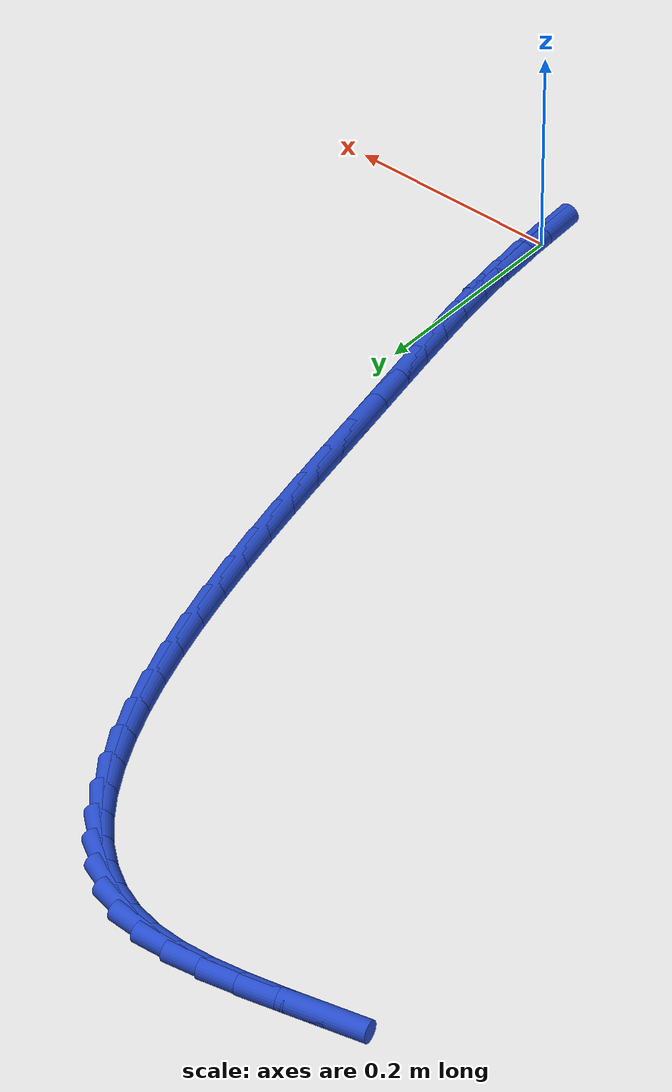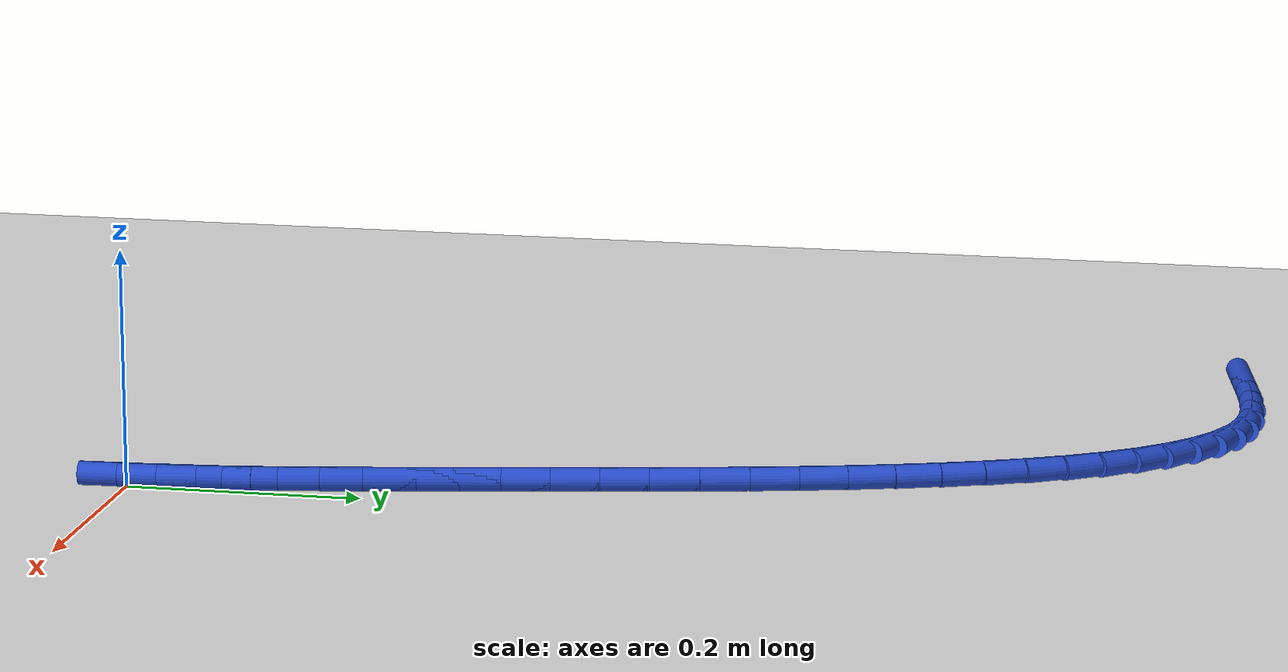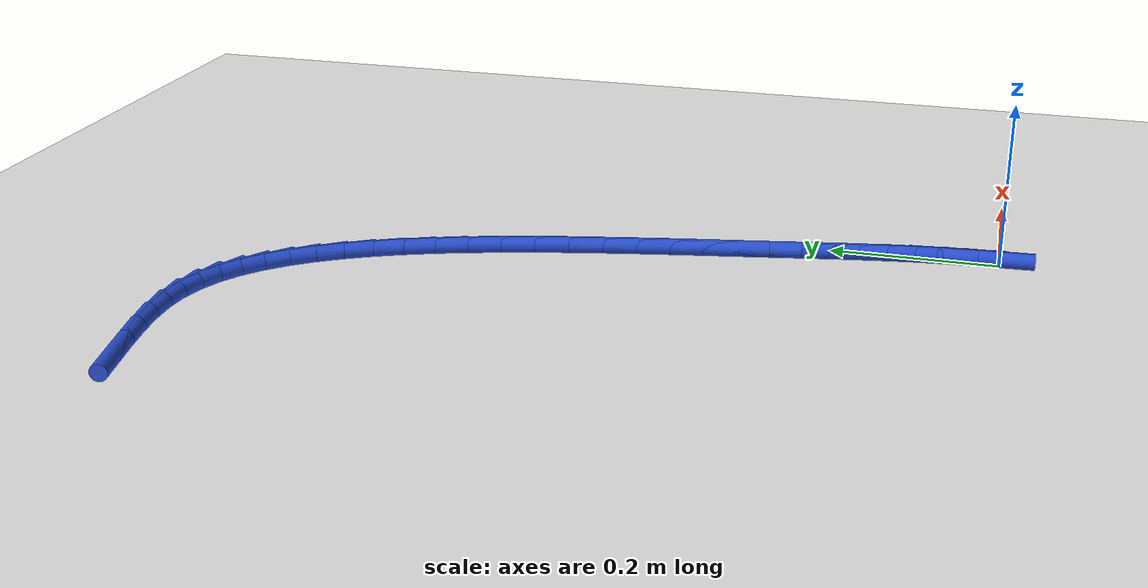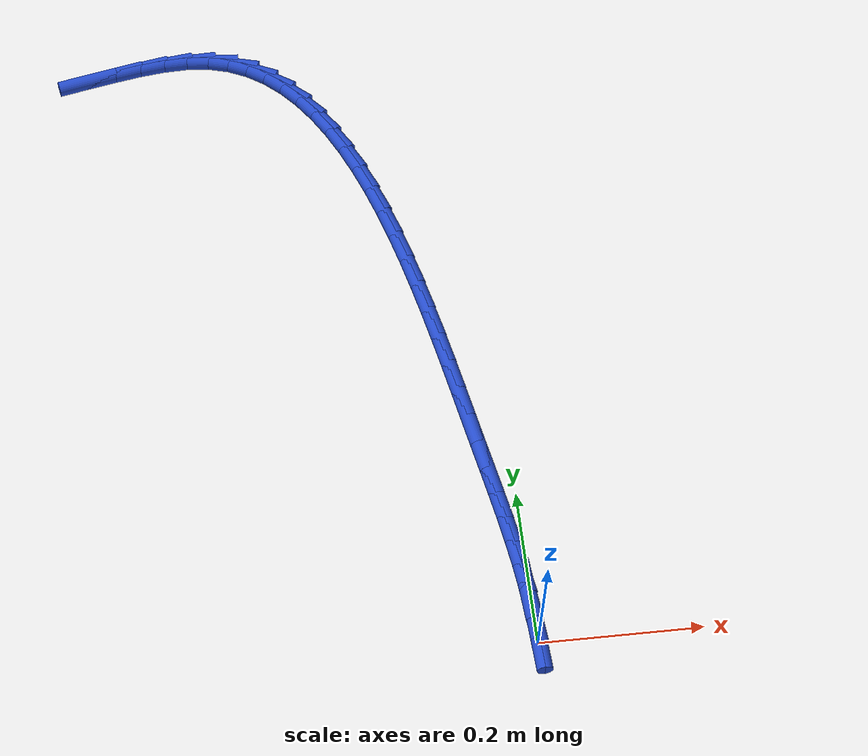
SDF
<sdf version="1.6">
 <world name="default">
  <model name="ground_plane">
   <static>1</static>
   <link name="link">
    <collision name="collision">
     <geometry><plane><normal>0 0 1</normal><size>100 100</size></plane></geometry>
     <surface><friction><ode><mu>100</mu><mu2>50</mu2></ode></friction></surface>
    </collision>
    <visual name="visual">
     <cast_shadows>0</cast_shadows>
     <geometry><plane><normal>0 0 1</normal><size>100 100</size></plane></geometry>
     <material>
      <script><uri>file://media/materials/scripts/gazebo.material</uri><name>Gazebo/WhiteGlow</name></script>
     </material>
    </visual>
   </link>
  </model>
  <model name="line">
   <link name="link_0">
    <pose>8.673617379884035e-19 1.1102230246251565e-16 0.01 0 1.57 -1.5212087982481513</pose>
    <collision name="collision">
     <geometry><cylinder><radius>0.01</radius><length>0.08</length></cylinder></geometry>
    </collision>
    <visual name="visual">
     <material>
      <script><name>Gazebo/Blue</name><uri>file://media/materials/scripts/gazebo.material</uri></script>
     </material>
     <geometry><cylinder><radius>0.01</radius><length>0.08</length></cylinder></geometry>
    </visual>
   </link>
   <link name="link_1">
    <pose>-0.001661368765570098 0.0334762966615342 0.01 0 1.57 -1.4846151093203546</pose>
    <collision name="collision">
     <geometry><cylinder><radius>0.01</radius><length>0.08</length></cylinder></geometry>
    </collision>
    <visual name="visual">
     <material>
      <script><name>Gazebo/Blue</name><uri>file://media/materials/scripts/gazebo.material</uri></script>
     </material>
     <geometry><cylinder><radius>0.01</radius><length>0.08</length></cylinder></geometry>
    </visual>
   </link>
   <link name="link_2">
    <pose>-0.004521796959074508 0.06658493806401557 0.01 0 1.57 -1.4528000755124728</pose>
    <collision name="collision">
     <geometry><cylinder><radius>0.01</radius><length>0.08</length></cylinder></geometry>
    </collision>
    <visual name="visual">
     <material>
      <script><name>Gazebo/Blue</name><uri>file://media/materials/scripts/gazebo.material</uri></script>
     </material>
     <geometry><cylinder><radius>0.01</radius><length>0.08</length></cylinder></geometry>
    </visual>
   </link>
   <link name="link_3">
    <pose>-0.008432542661013587 0.09957394296238382 0.01 0 1.57 -1.4264953035481684</pose>
    <collision name="collision">
     <geometry><cylinder><radius>0.01</radius><length>0.08</length></cylinder></geometry>
    </collision>
    <visual name="visual">
     <material>
      <script><name>Gazebo/Blue</name><uri>file://media/materials/scripts/gazebo.material</uri></script>
     </material>
     <geometry><cylinder><radius>0.01</radius><length>0.08</length></cylinder></geometry>
    </visual>
   </link>
   <link name="link_4">
    <pose>-0.013244863951887703 0.13269133011157877 0.01 0 1.57 -1.4061456856873413</pose>
    <collision name="collision">
     <geometry><cylinder><radius>0.01</radius><length>0.08</length></cylinder></geometry>
    </collision>
    <visual name="visual">
     <material>
      <script><name>Gazebo/Blue</name><uri>file://media/materials/scripts/gazebo.material</uri></script>
     </material>
     <geometry><cylinder><radius>0.01</radius><length>0.08</length></cylinder></geometry>
    </visual>
   </link>
   <link name="link_5">
    <pose>-0.018810018912197222 0.16618511826654012 0.01 0 1.57 -1.391909453461869</pose>
    <collision name="collision">
     <geometry><cylinder><radius>0.01</radius><length>0.08</length></cylinder></geometry>
    </collision>
    <visual name="visual">
     <material>
      <script><name>Gazebo/Blue</name><uri>file://media/materials/scripts/gazebo.material</uri></script>
     </material>
     <geometry><cylinder><radius>0.01</radius><length>0.08</length></cylinder></geometry>
    </visual>
   </link>
   <link name="link_6">
    <pose>-0.024979265622442494 0.20030332618220742 0.01 0 1.57 -1.3836861519026695</pose>
    <collision name="collision">
     <geometry><cylinder><radius>0.01</radius><length>0.08</length></cylinder></geometry>
    </collision>
    <visual name="visual">
     <material>
      <script><name>Gazebo/Blue</name><uri>file://media/materials/scripts/gazebo.material</uri></script>
     </material>
     <geometry><cylinder><radius>0.01</radius><length>0.08</length></cylinder></geometry>
    </visual>
   </link>
   <link name="link_7">
    <pose>-0.0316038621631239 0.23529397261352053 0.01 0 1.57 -1.3811615950575682</pose>
    <collision name="collision">
     <geometry><cylinder><radius>0.01</radius><length>0.08</length></cylinder></geometry>
    </collision>
    <visual name="visual">
     <material>
      <script><name>Gazebo/Blue</name><uri>file://media/materials/scripts/gazebo.material</uri></script>
     </material>
     <geometry><cylinder><radius>0.01</radius><length>0.08</length></cylinder></geometry>
    </visual>
   </link>
   <link name="link_8">
    <pose>-0.0385350666147418 0.27140507631541905 0.01 0 1.57 -1.3832920208682706</pose>
    <collision name="collision">
     <geometry><cylinder><radius>0.01</radius><length>0.08</length></cylinder></geometry>
    </collision>
    <visual name="visual">
     <material>
      <script><name>Gazebo/Blue</name><uri>file://media/materials/scripts/gazebo.material</uri></script>
     </material>
     <geometry><cylinder><radius>0.01</radius><length>0.08</length></cylinder></geometry>
    </visual>
   </link>
   <link name="link_9">
    <pose>-0.045639557668936015 0.30884973998140686 0.01 0 1.57 -1.384328095523199</pose>
    <collision name="collision">
     <geometry><cylinder><radius>0.01</radius><length>0.08</length></cylinder></geometry>
    </collision>
    <visual name="visual">
     <material>
      <script><name>Gazebo/Blue</name><uri>file://media/materials/scripts/gazebo.material</uri></script>
     </material>
     <geometry><cylinder><radius>0.01</radius><length>0.08</length></cylinder></geometry>
    </visual>
   </link>
   <link name="link_10">
    <pose>-0.0529323098806072 0.3475052879479914 0.01 0 1.57 -1.381496522466564</pose>
    <collision name="collision">
     <geometry><cylinder><radius>0.01</radius><length>0.08</length></cylinder></geometry>
    </collision>
    <visual name="visual">
     <material>
      <script><name>Gazebo/Blue</name><uri>file://media/materials/scripts/gazebo.material</uri></script>
     </material>
     <geometry><cylinder><radius>0.01</radius><length>0.08</length></cylinder></geometry>
    </visual>
   </link>
   <link name="link_11">
    <pose>-0.0605110637291185 0.38706164211495525 0.01 0 1.57 -1.3749727827922171</pose>
    <collision name="collision">
     <geometry><cylinder><radius>0.01</radius><length>0.08</length></cylinder></geometry>
    </collision>
    <visual name="visual">
     <material>
      <script><name>Gazebo/Blue</name><uri>file://media/materials/scripts/gazebo.material</uri></script>
     </material>
     <geometry><cylinder><radius>0.01</radius><length>0.08</length></cylinder></geometry>
    </visual>
   </link>
   <link name="link_12">
    <pose>-0.06847446004382249 0.42720668576796444 0.01 0 1.57 -1.3647961792488679</pose>
    <collision name="collision">
     <geometry><cylinder><radius>0.01</radius><length>0.08</length></cylinder></geometry>
    </collision>
    <visual name="visual">
     <material>
      <script><name>Gazebo/Blue</name><uri>file://media/materials/scripts/gazebo.material</uri></script>
     </material>
     <geometry><cylinder><radius>0.01</radius><length>0.08</length></cylinder></geometry>
    </visual>
   </link>
   <link name="link_13">
    <pose>-0.07692113965407184 0.467628302192686 0.01 0 1.57 -1.3508554336957348</pose>
    <collision name="collision">
     <geometry><cylinder><radius>0.01</radius><length>0.08</length></cylinder></geometry>
    </collision>
    <visual name="visual">
     <material>
      <script><name>Gazebo/Blue</name><uri>file://media/materials/scripts/gazebo.material</uri></script>
     </material>
     <geometry><cylinder><radius>0.01</radius><length>0.08</length></cylinder></geometry>
    </visual>
   </link>
   <link name="link_14">
    <pose>-0.08594974338921907 0.5080143746747858 0.01 0 1.57 -1.3328922962845482</pose>
    <collision name="collision">
     <geometry><cylinder><radius>0.01</radius><length>0.08</length></cylinder></geometry>
    </collision>
    <visual name="visual">
     <material>
      <script><name>Gazebo/Blue</name><uri>file://media/materials/scripts/gazebo.material</uri></script>
     </material>
     <geometry><cylinder><radius>0.01</radius><length>0.08</length></cylinder></geometry>
    </visual>
   </link>
   <link name="link_15">
    <pose>-0.09565891207861685 0.5480527864999307 0.01 0 1.57 -1.3104925611236626</pose>
    <collision name="collision">
     <geometry><cylinder><radius>0.01</radius><length>0.08</length></cylinder></geometry>
    </collision>
    <visual name="visual">
     <material>
      <script><name>Gazebo/Blue</name><uri>file://media/materials/scripts/gazebo.material</uri></script>
     </material>
     <geometry><cylinder><radius>0.01</radius><length>0.08</length></cylinder></geometry>
    </visual>
   </link>
   <link name="link_16">
    <pose>-0.10614728655161779 0.5874314209537871 0.01 0 1.57 -1.2830653320867553</pose>
    <collision name="collision">
     <geometry><cylinder><radius>0.01</radius><length>0.08</length></cylinder></geometry>
    </collision>
    <visual name="visual">
     <material>
      <script><name>Gazebo/Blue</name><uri>file://media/materials/scripts/gazebo.material</uri></script>
     </material>
     <geometry><cylinder><radius>0.01</radius><length>0.08</length></cylinder></geometry>
    </visual>
   </link>
   <link name="link_17">
    <pose>-0.11751350763757448 0.6258381613220215 0.01 0 1.57 -1.2498104905205722</pose>
    <collision name="collision">
     <geometry><cylinder><radius>0.01</radius><length>0.08</length></cylinder></geometry>
    </collision>
    <visual name="visual">
     <material>
      <script><name>Gazebo/Blue</name><uri>file://media/materials/scripts/gazebo.material</uri></script>
     </material>
     <geometry><cylinder><radius>0.01</radius><length>0.08</length></cylinder></geometry>
    </visual>
   </link>
   <link name="link_18">
    <pose>-0.12985621616583953 0.6629608908903003 0.01 0 1.57 -1.2096744515808182</pose>
    <collision name="collision">
     <geometry><cylinder><radius>0.01</radius><length>0.08</length></cylinder></geometry>
    </collision>
    <visual name="visual">
     <material>
      <script><name>Gazebo/Blue</name><uri>file://media/materials/scripts/gazebo.material</uri></script>
     </material>
     <geometry><cylinder><radius>0.01</radius><length>0.08</length></cylinder></geometry>
    </visual>
   </link>
   <link name="link_19">
    <pose>-0.14327405296576548 0.6984874929442898 0.01 0 1.57 -1.1612963591561665</pose>
    <collision name="collision">
     <geometry><cylinder><radius>0.01</radius><length>0.08</length></cylinder></geometry>
    </collision>
    <visual name="visual">
     <material>
      <script><name>Gazebo/Blue</name><uri>file://media/materials/scripts/gazebo.material</uri></script>
     </material>
     <geometry><cylinder><radius>0.01</radius><length>0.08</length></cylinder></geometry>
    </visual>
   </link>
   <link name="link_20">
    <pose>-0.15786565886670506 0.7321058507696567 0.01 0 1.57 -1.1029530299818024</pose>
    <collision name="collision">
     <geometry><cylinder><radius>0.01</radius><length>0.08</length></cylinder></geometry>
    </collision>
    <visual name="visual">
     <material>
      <script><name>Gazebo/Blue</name><uri>file://media/materials/scripts/gazebo.material</uri></script>
     </material>
     <geometry><cylinder><radius>0.01</radius><length>0.08</length></cylinder></geometry>
    </visual>
   </link>
   <link name="link_21">
    <pose>-0.17372967469801076 0.7635038476520672 0.01 0 1.57 -1.0325255693916997</pose>
    <collision name="collision">
     <geometry><cylinder><radius>0.01</radius><length>0.08</length></cylinder></geometry>
    </collision>
    <visual name="visual">
     <material>
      <script><name>Gazebo/Blue</name><uri>file://media/materials/scripts/gazebo.material</uri></script>
     </material>
     <geometry><cylinder><radius>0.01</radius><length>0.08</length></cylinder></geometry>
    </visual>
   </link>
   <link name="link_22">
    <pose>-0.19096474128903523 0.792369366877188 0.01 0 1.57 -0.9475407839293734</pose>
    <collision name="collision">
     <geometry><cylinder><radius>0.01</radius><length>0.08</length></cylinder></geometry>
    </collision>
    <visual name="visual">
     <material>
      <script><name>Gazebo/Blue</name><uri>file://media/materials/scripts/gazebo.material</uri></script>
     </material>
     <geometry><cylinder><radius>0.01</radius><length>0.08</length></cylinder></geometry>
    </visual>
   </link>
   <link name="link_23">
    <pose>-0.20966949946913122 0.8183902917306858 0.01 0 1.57 -0.8453929556715997</pose>
    <collision name="collision">
     <geometry><cylinder><radius>0.01</radius><length>0.08</length></cylinder></geometry>
    </collision>
    <visual name="visual">
     <material>
      <script><name>Gazebo/Blue</name><uri>file://media/materials/scripts/gazebo.material</uri></script>
     </material>
     <geometry><cylinder><radius>0.01</radius><length>0.08</length></cylinder></geometry>
    </visual>
   </link>
   <link name="link_24">
    <pose>-0.2299425900676511 0.8412545054982264 0.01 0 1.57 -0.7239141213903106</pose>
    <collision name="collision">
     <geometry><cylinder><radius>0.01</radius><length>0.08</length></cylinder></geometry>
    </collision>
    <visual name="visual">
     <material>
      <script><name>Gazebo/Blue</name><uri>file://media/materials/scripts/gazebo.material</uri></script>
     </material>
     <geometry><cylinder><radius>0.01</radius><length>0.08</length></cylinder></geometry>
    </visual>
   </link>
   <link name="link_25">
    <pose>-0.25188265391394765 0.8606498914654769 0.01 0 1.57 -0.5824525466910896</pose>
    <collision name="collision">
     <geometry><cylinder><radius>0.01</radius><length>0.08</length></cylinder></geometry>
    </collision>
    <visual name="visual">
     <material>
      <script><name>Gazebo/Blue</name><uri>file://media/materials/scripts/gazebo.material</uri></script>
     </material>
     <geometry><cylinder><radius>0.01</radius><length>0.08</length></cylinder></geometry>
    </visual>
   </link>
   <link name="link_26">
    <pose>-0.27558833183737336 0.8762643329181032 0.01 0 1.57 -0.4233387469850311</pose>
    <collision name="collision">
     <geometry><cylinder><radius>0.01</radius><length>0.08</length></cylinder></geometry>
    </collision>
    <visual name="visual">
     <material>
      <script><name>Gazebo/Blue</name><uri>file://media/materials/scripts/gazebo.material</uri></script>
     </material>
     <geometry><cylinder><radius>0.01</radius><length>0.08</length></cylinder></geometry>
    </visual>
   </link>
   <link name="link_27">
    <pose>-0.30115826466728085 0.8877857131417721 0.01 0 1.57 -0.25292742398793955</pose>
    <collision name="collision">
     <geometry><cylinder><radius>0.01</radius><length>0.08</length></cylinder></geometry>
    </collision>
    <visual name="visual">
     <material>
      <script><name>Gazebo/Blue</name><uri>file://media/materials/scripts/gazebo.material</uri></script>
     </material>
     <geometry><cylinder><radius>0.01</radius><length>0.08</length></cylinder></geometry>
    </visual>
   </link>
   <link name="link_28">
    <pose>-0.3286910926172952 0.8949019181546274 0.01 0 1.57 -0.08816823567520314</pose>
    <collision name="collision">
     <geometry><cylinder><radius>0.01</radius><length>0.08</length></cylinder></geometry>
    </collision>
    <visual name="visual">
     <material>
      <script><name>Gazebo/Blue</name><uri>file://media/materials/scripts/gazebo.material</uri></script>
     </material>
     <geometry><cylinder><radius>0.01</radius><length>0.08</length></cylinder></geometry>
    </visual>
   </link>
   <link name="link_29">
    <pose>-0.3582374798571151 0.8975137422896868 0.01 0 1.57 0.03813340483004825</pose>
    <collision name="collision">
     <geometry><cylinder><radius>0.01</radius><length>0.08</length></cylinder></geometry>
    </collision>
    <visual name="visual">
     <material>
      <script><name>Gazebo/Blue</name><uri>file://media/materials/scripts/gazebo.material</uri></script>
     </material>
     <geometry><cylinder><radius>0.01</radius><length>0.08</length></cylinder></geometry>
    </visual>
   </link>
   <link name="link_30">
    <pose>-0.38966949520027166 0.8963145511970907 0.01 0 1.57 0.12402622890133069</pose>
    <collision name="collision">
     <geometry><cylinder><radius>0.01</radius><length>0.08</length></cylinder></geometry>
    </collision>
    <visual name="visual">
     <material>
      <script><name>Gazebo/Blue</name><uri>file://media/materials/scripts/gazebo.material</uri></script>
     </material>
     <geometry><cylinder><radius>0.01</radius><length>0.08</length></cylinder></geometry>
    </visual>
   </link>
   <link name="link_31">
    <pose>-0.422817658062107 0.892182098642972 0.01 0 1.57 0.17649809885115322</pose>
    <collision name="collision">
     <geometry><cylinder><radius>0.01</radius><length>0.08</length></cylinder></geometry>
    </collision>
    <visual name="visual">
     <material>
      <script><name>Gazebo/Blue</name><uri>file://media/materials/scripts/gazebo.material</uri></script>
     </material>
     <geometry><cylinder><radius>0.01</radius><length>0.08</length></cylinder></geometry>
    </visual>
   </link>
   <link name="link_32">
    <pose>-0.45751248785796317 0.8859941383934634 0.01 0 1.57 0.2014256434785553</pose>
    <collision name="collision">
     <geometry><cylinder><radius>0.01</radius><length>0.08</length></cylinder></geometry>
    </collision>
    <visual name="visual">
     <material>
      <script><name>Gazebo/Blue</name><uri>file://media/materials/scripts/gazebo.material</uri></script>
     </material>
     <geometry><cylinder><radius>0.01</radius><length>0.08</length></cylinder></geometry>
    </visual>
   </link>
   <link name="link_33">
    <pose>-0.49358450400318205 0.8786284242146976 0.01 0 1.57 0.20280015749197633</pose>
    <collision name="collision">
     <geometry><cylinder><radius>0.01</radius><length>0.08</length></cylinder></geometry>
    </collision>
    <visual name="visual">
     <material>
      <script><name>Gazebo/Blue</name><uri>file://media/materials/scripts/gazebo.material</uri></script>
     </material>
     <geometry><cylinder><radius>0.01</radius><length>0.08</length></cylinder></geometry>
    </visual>
   </link>
   <link name="link_220">
    <pose>-6.938893903907228e-18 4.85722573273506e-17 0.01 0 1.57 -1.520499899657726</pose>
    <collision name="collision">
     <geometry><cylinder><radius>0.01</radius><length>0.08</length></cylinder></geometry>
    </collision>
    <visual name="visual">
     <material>
      <script><name>Gazebo/Blue</name><uri>file://media/materials/scripts/gazebo.material</uri></script>
     </material>
     <geometry><cylinder><radius>0.01</radius><length>0.08</length></cylinder></geometry>
    </visual>
   </link>
   <link name="link_221">
    <pose>-0.001681416097441022 0.03340193549817866 0.01 0 1.57 -1.478973850090066</pose>
    <collision name="collision">
     <geometry><cylinder><radius>0.01</radius><length>0.08</length></cylinder></geometry>
    </collision>
    <visual name="visual">
     <material>
      <script><name>Gazebo/Blue</name><uri>file://media/materials/scripts/gazebo.material</uri></script>
     </material>
     <geometry><cylinder><radius>0.01</radius><length>0.08</length></cylinder></geometry>
    </visual>
   </link>
   <link name="link_222">
    <pose>-0.004682175614042392 0.06599004875717916 0.01 0 1.57 -1.4999622813287636</pose>
    <collision name="collision">
     <geometry><cylinder><radius>0.01</radius><length>0.08</length></cylinder></geometry>
    </collision>
    <visual name="visual">
     <material>
      <script><name>Gazebo/Blue</name><uri>file://media/materials/scripts/gazebo.material</uri></script>
     </material>
     <geometry><cylinder><radius>0.01</radius><length>0.08</length></cylinder></geometry>
    </visual>
   </link>
  </model>
 </world>
</sdf>
